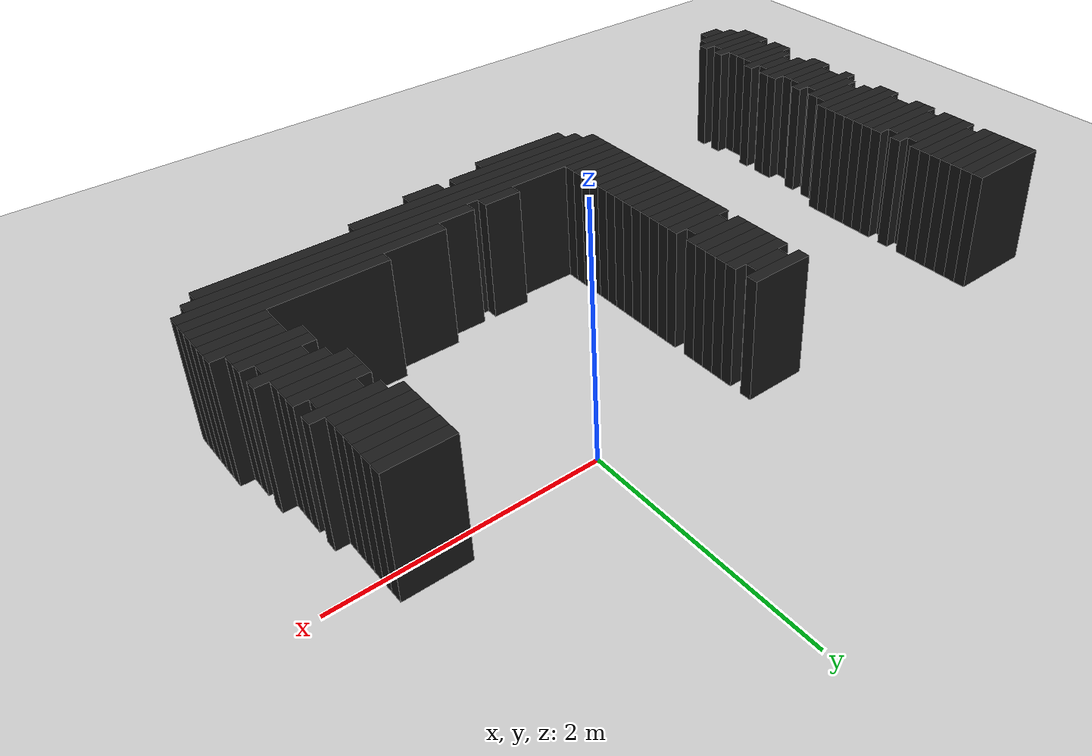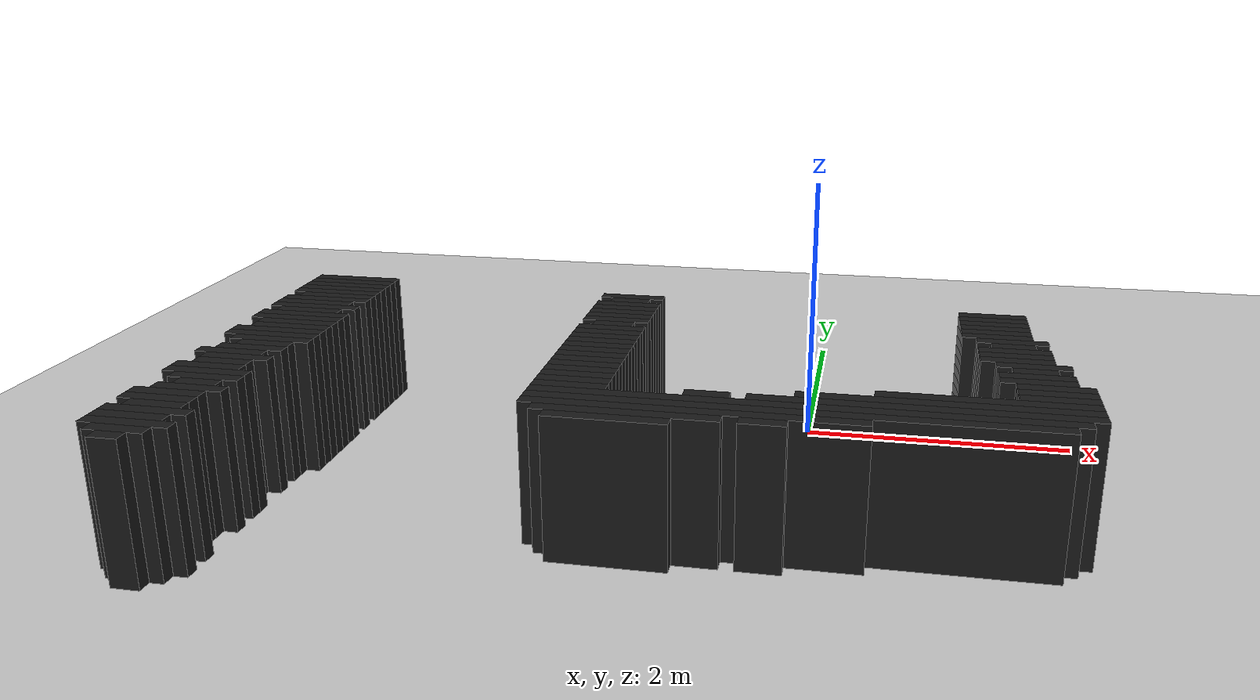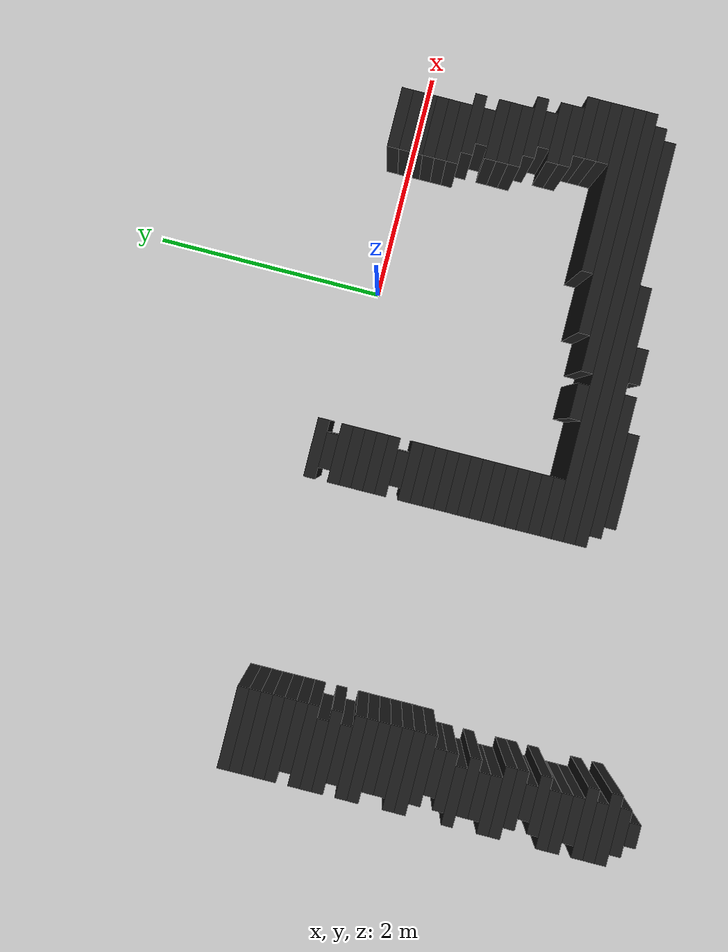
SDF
<sdf version="1.9">
 <world name="drawn_tb4_world">
  <model name="flat_floor">
   <static>true</static>
   <pose>0.0000 0.0000 -0.0100 0.0000 0.0000 0.0000</pose>
   <link name="link">
    <collision name="collision"><geometry><box><size>16.0000 16.0000 0.0200</size></box></geometry></collision>
    <visual name="visual">
     <geometry><box><size>16.0000 16.0000 0.0200</size></box></geometry>
     <material><ambient>0.8 0.8 0.8 1</ambient><diffuse>0.8 0.8 0.8 1</diffuse></material>
    </visual>
   </link>
  </model>
  <model name="drawn_wall_0084">
   <static>true</static>
   <pose>-3.8500 0.2500 0.5000 0.0000 0.0000 0.0000</pose>
   <link name="link">
    <collision name="collision"><geometry><box><size>0.7000 0.1000 1.0000</size></box></geometry></collision>
    <visual name="visual">
     <geometry><box><size>0.7000 0.1000 1.0000</size></box></geometry>
     <material><ambient>0.1 0.1 0.1 1</ambient><diffuse>0.1 0.1 0.1 1</diffuse></material>
    </visual>
   </link>
  </model>
  <model name="drawn_wall_0087">
   <static>true</static>
   <pose>-3.8500 0.1500 0.5000 0.0000 0.0000 0.0000</pose>
   <link name="link">
    <collision name="collision"><geometry><box><size>0.7000 0.1000 1.0000</size></box></geometry></collision>
    <visual name="visual">
     <geometry><box><size>0.7000 0.1000 1.0000</size></box></geometry>
     <material><ambient>0.1 0.1 0.1 1</ambient><diffuse>0.1 0.1 0.1 1</diffuse></material>
    </visual>
   </link>
  </model>
  <model name="drawn_wall_0088">
   <static>true</static>
   <pose>-1.4500 0.1500 0.5000 0.0000 0.0000 0.0000</pose>
   <link name="link">
    <collision name="collision"><geometry><box><size>0.5000 0.1000 1.0000</size></box></geometry></collision>
    <visual name="visual">
     <geometry><box><size>0.5000 0.1000 1.0000</size></box></geometry>
     <material><ambient>0.1 0.1 0.1 1</ambient><diffuse>0.1 0.1 0.1 1</diffuse></material>
    </visual>
   </link>
  </model>
  <model name="drawn_wall_0089">
   <static>true</static>
   <pose>1.3500 0.1500 0.5000 0.0000 0.0000 0.0000</pose>
   <link name="link">
    <collision name="collision"><geometry><box><size>0.5000 0.1000 1.0000</size></box></geometry></collision>
    <visual name="visual">
     <geometry><box><size>0.5000 0.1000 1.0000</size></box></geometry>
     <material><ambient>0.1 0.1 0.1 1</ambient><diffuse>0.1 0.1 0.1 1</diffuse></material>
    </visual>
   </link>
  </model>
  <model name="drawn_wall_0090">
   <static>true</static>
   <pose>-3.8500 0.0500 0.5000 0.0000 0.0000 0.0000</pose>
   <link name="link">
    <collision name="collision"><geometry><box><size>0.7000 0.1000 1.0000</size></box></geometry></collision>
    <visual name="visual">
     <geometry><box><size>0.7000 0.1000 1.0000</size></box></geometry>
     <material><ambient>0.1 0.1 0.1 1</ambient><diffuse>0.1 0.1 0.1 1</diffuse></material>
    </visual>
   </link>
  </model>
  <model name="drawn_wall_0091">
   <static>true</static>
   <pose>-1.4500 0.0500 0.5000 0.0000 0.0000 0.0000</pose>
   <link name="link">
    <collision name="collision"><geometry><box><size>0.3000 0.1000 1.0000</size></box></geometry></collision>
    <visual name="visual">
     <geometry><box><size>0.3000 0.1000 1.0000</size></box></geometry>
     <material><ambient>0.1 0.1 0.1 1</ambient><diffuse>0.1 0.1 0.1 1</diffuse></material>
    </visual>
   </link>
  </model>
  <model name="drawn_wall_0092">
   <static>true</static>
   <pose>1.3500 0.0500 0.5000 0.0000 0.0000 0.0000</pose>
   <link name="link">
    <collision name="collision"><geometry><box><size>0.5000 0.1000 1.0000</size></box></geometry></collision>
    <visual name="visual">
     <geometry><box><size>0.5000 0.1000 1.0000</size></box></geometry>
     <material><ambient>0.1 0.1 0.1 1</ambient><diffuse>0.1 0.1 0.1 1</diffuse></material>
    </visual>
   </link>
  </model>
  <model name="drawn_wall_0093">
   <static>true</static>
   <pose>-3.8500 -0.0500 0.5000 0.0000 0.0000 0.0000</pose>
   <link name="link">
    <collision name="collision"><geometry><box><size>0.7000 0.1000 1.0000</size></box></geometry></collision>
    <visual name="visual">
     <geometry><box><size>0.7000 0.1000 1.0000</size></box></geometry>
     <material><ambient>0.1 0.1 0.1 1</ambient><diffuse>0.1 0.1 0.1 1</diffuse></material>
    </visual>
   </link>
  </model>
  <model name="drawn_wall_0094">
   <static>true</static>
   <pose>-1.4500 -0.0500 0.5000 0.0000 0.0000 0.0000</pose>
   <link name="link">
    <collision name="collision"><geometry><box><size>0.5000 0.1000 1.0000</size></box></geometry></collision>
    <visual name="visual">
     <geometry><box><size>0.5000 0.1000 1.0000</size></box></geometry>
     <material><ambient>0.1 0.1 0.1 1</ambient><diffuse>0.1 0.1 0.1 1</diffuse></material>
    </visual>
   </link>
  </model>
  <model name="drawn_wall_0095">
   <static>true</static>
   <pose>1.3500 -0.0500 0.5000 0.0000 0.0000 0.0000</pose>
   <link name="link">
    <collision name="collision"><geometry><box><size>0.5000 0.1000 1.0000</size></box></geometry></collision>
    <visual name="visual">
     <geometry><box><size>0.5000 0.1000 1.0000</size></box></geometry>
     <material><ambient>0.1 0.1 0.1 1</ambient><diffuse>0.1 0.1 0.1 1</diffuse></material>
    </visual>
   </link>
  </model>
  <model name="drawn_wall_0096">
   <static>true</static>
   <pose>-3.8500 -0.1500 0.5000 0.0000 0.0000 0.0000</pose>
   <link name="link">
    <collision name="collision"><geometry><box><size>0.7000 0.1000 1.0000</size></box></geometry></collision>
    <visual name="visual">
     <geometry><box><size>0.7000 0.1000 1.0000</size></box></geometry>
     <material><ambient>0.1 0.1 0.1 1</ambient><diffuse>0.1 0.1 0.1 1</diffuse></material>
    </visual>
   </link>
  </model>
  <model name="drawn_wall_0097">
   <static>true</static>
   <pose>-1.4500 -0.1500 0.5000 0.0000 0.0000 0.0000</pose>
   <link name="link">
    <collision name="collision"><geometry><box><size>0.5000 0.1000 1.0000</size></box></geometry></collision>
    <visual name="visual">
     <geometry><box><size>0.5000 0.1000 1.0000</size></box></geometry>
     <material><ambient>0.1 0.1 0.1 1</ambient><diffuse>0.1 0.1 0.1 1</diffuse></material>
    </visual>
   </link>
  </model>
  <model name="drawn_wall_0098">
   <static>true</static>
   <pose>1.3500 -0.1500 0.5000 0.0000 0.0000 0.0000</pose>
   <link name="link">
    <collision name="collision"><geometry><box><size>0.5000 0.1000 1.0000</size></box></geometry></collision>
    <visual name="visual">
     <geometry><box><size>0.5000 0.1000 1.0000</size></box></geometry>
     <material><ambient>0.1 0.1 0.1 1</ambient><diffuse>0.1 0.1 0.1 1</diffuse></material>
    </visual>
   </link>
  </model>
  <model name="drawn_wall_0099">
   <static>true</static>
   <pose>-3.8000 -0.2500 0.5000 0.0000 0.0000 0.0000</pose>
   <link name="link">
    <collision name="collision"><geometry><box><size>0.6000 0.1000 1.0000</size></box></geometry></collision>
    <visual name="visual">
     <geometry><box><size>0.6000 0.1000 1.0000</size></box></geometry>
     <material><ambient>0.1 0.1 0.1 1</ambient><diffuse>0.1 0.1 0.1 1</diffuse></material>
    </visual>
   </link>
  </model>
  <model name="drawn_wall_0100">
   <static>true</static>
   <pose>-1.4500 -0.2500 0.5000 0.0000 0.0000 0.0000</pose>
   <link name="link">
    <collision name="collision"><geometry><box><size>0.5000 0.1000 1.0000</size></box></geometry></collision>
    <visual name="visual">
     <geometry><box><size>0.5000 0.1000 1.0000</size></box></geometry>
     <material><ambient>0.1 0.1 0.1 1</ambient><diffuse>0.1 0.1 0.1 1</diffuse></material>
    </visual>
   </link>
  </model>
  <model name="drawn_wall_0101">
   <static>true</static>
   <pose>1.3500 -0.2500 0.5000 0.0000 0.0000 0.0000</pose>
   <link name="link">
    <collision name="collision"><geometry><box><size>0.5000 0.1000 1.0000</size></box></geometry></collision>
    <visual name="visual">
     <geometry><box><size>0.5000 0.1000 1.0000</size></box></geometry>
     <material><ambient>0.1 0.1 0.1 1</ambient><diffuse>0.1 0.1 0.1 1</diffuse></material>
    </visual>
   </link>
  </model>
  <model name="drawn_wall_0102">
   <static>true</static>
   <pose>-3.8500 -0.3500 0.5000 0.0000 0.0000 0.0000</pose>
   <link name="link">
    <collision name="collision"><geometry><box><size>0.7000 0.1000 1.0000</size></box></geometry></collision>
    <visual name="visual">
     <geometry><box><size>0.7000 0.1000 1.0000</size></box></geometry>
     <material><ambient>0.1 0.1 0.1 1</ambient><diffuse>0.1 0.1 0.1 1</diffuse></material>
    </visual>
   </link>
  </model>
  <model name="drawn_wall_0103">
   <static>true</static>
   <pose>-1.4500 -0.3500 0.5000 0.0000 0.0000 0.0000</pose>
   <link name="link">
    <collision name="collision"><geometry><box><size>0.5000 0.1000 1.0000</size></box></geometry></collision>
    <visual name="visual">
     <geometry><box><size>0.5000 0.1000 1.0000</size></box></geometry>
     <material><ambient>0.1 0.1 0.1 1</ambient><diffuse>0.1 0.1 0.1 1</diffuse></material>
    </visual>
   </link>
  </model>
  <model name="drawn_wall_0104">
   <static>true</static>
   <pose>1.3500 -0.3500 0.5000 0.0000 0.0000 0.0000</pose>
   <link name="link">
    <collision name="collision"><geometry><box><size>0.5000 0.1000 1.0000</size></box></geometry></collision>
    <visual name="visual">
     <geometry><box><size>0.5000 0.1000 1.0000</size></box></geometry>
     <material><ambient>0.1 0.1 0.1 1</ambient><diffuse>0.1 0.1 0.1 1</diffuse></material>
    </visual>
   </link>
  </model>
  <model name="drawn_wall_0105">
   <static>true</static>
   <pose>-3.9000 -0.4500 0.5000 0.0000 0.0000 0.0000</pose>
   <link name="link">
    <collision name="collision"><geometry><box><size>0.6000 0.1000 1.0000</size></box></geometry></collision>
    <visual name="visual">
     <geometry><box><size>0.6000 0.1000 1.0000</size></box></geometry>
     <material><ambient>0.1 0.1 0.1 1</ambient><diffuse>0.1 0.1 0.1 1</diffuse></material>
    </visual>
   </link>
  </model>
  <model name="drawn_wall_0106">
   <static>true</static>
   <pose>-1.4500 -0.4500 0.5000 0.0000 0.0000 0.0000</pose>
   <link name="link">
    <collision name="collision"><geometry><box><size>0.5000 0.1000 1.0000</size></box></geometry></collision>
    <visual name="visual">
     <geometry><box><size>0.5000 0.1000 1.0000</size></box></geometry>
     <material><ambient>0.1 0.1 0.1 1</ambient><diffuse>0.1 0.1 0.1 1</diffuse></material>
    </visual>
   </link>
  </model>
  <model name="drawn_wall_0107">
   <static>true</static>
   <pose>1.4500 -0.4500 0.5000 0.0000 0.0000 0.0000</pose>
   <link name="link">
    <collision name="collision"><geometry><box><size>0.5000 0.1000 1.0000</size></box></geometry></collision>
    <visual name="visual">
     <geometry><box><size>0.5000 0.1000 1.0000</size></box></geometry>
     <material><ambient>0.1 0.1 0.1 1</ambient><diffuse>0.1 0.1 0.1 1</diffuse></material>
    </visual>
   </link>
  </model>
  <model name="drawn_wall_0108">
   <static>true</static>
   <pose>-3.8500 -0.5500 0.5000 0.0000 0.0000 0.0000</pose>
   <link name="link">
    <collision name="collision"><geometry><box><size>0.7000 0.1000 1.0000</size></box></geometry></collision>
    <visual name="visual">
     <geometry><box><size>0.7000 0.1000 1.0000</size></box></geometry>
     <material><ambient>0.1 0.1 0.1 1</ambient><diffuse>0.1 0.1 0.1 1</diffuse></material>
    </visual>
   </link>
  </model>
  <model name="drawn_wall_0109">
   <static>true</static>
   <pose>-1.4500 -0.5500 0.5000 0.0000 0.0000 0.0000</pose>
   <link name="link">
    <collision name="collision"><geometry><box><size>0.3000 0.1000 1.0000</size></box></geometry></collision>
    <visual name="visual">
     <geometry><box><size>0.3000 0.1000 1.0000</size></box></geometry>
     <material><ambient>0.1 0.1 0.1 1</ambient><diffuse>0.1 0.1 0.1 1</diffuse></material>
    </visual>
   </link>
  </model>
  <model name="drawn_wall_0110">
   <static>true</static>
   <pose>1.4500 -0.5500 0.5000 0.0000 0.0000 0.0000</pose>
   <link name="link">
    <collision name="collision"><geometry><box><size>0.3000 0.1000 1.0000</size></box></geometry></collision>
    <visual name="visual">
     <geometry><box><size>0.3000 0.1000 1.0000</size></box></geometry>
     <material><ambient>0.1 0.1 0.1 1</ambient><diffuse>0.1 0.1 0.1 1</diffuse></material>
    </visual>
   </link>
  </model>
  <model name="drawn_wall_0111">
   <static>true</static>
   <pose>-3.8500 -0.6500 0.5000 0.0000 0.0000 0.0000</pose>
   <link name="link">
    <collision name="collision"><geometry><box><size>0.5000 0.1000 1.0000</size></box></geometry></collision>
    <visual name="visual">
     <geometry><box><size>0.5000 0.1000 1.0000</size></box></geometry>
     <material><ambient>0.1 0.1 0.1 1</ambient><diffuse>0.1 0.1 0.1 1</diffuse></material>
    </visual>
   </link>
  </model>
  <model name="drawn_wall_0112">
   <static>true</static>
   <pose>-1.4500 -0.6500 0.5000 0.0000 0.0000 0.0000</pose>
   <link name="link">
    <collision name="collision"><geometry><box><size>0.5000 0.1000 1.0000</size></box></geometry></collision>
    <visual name="visual">
     <geometry><box><size>0.5000 0.1000 1.0000</size></box></geometry>
     <material><ambient>0.1 0.1 0.1 1</ambient><diffuse>0.1 0.1 0.1 1</diffuse></material>
    </visual>
   </link>
  </model>
  <model name="drawn_wall_0113">
   <static>true</static>
   <pose>1.4500 -0.6500 0.5000 0.0000 0.0000 0.0000</pose>
   <link name="link">
    <collision name="collision"><geometry><box><size>0.5000 0.1000 1.0000</size></box></geometry></collision>
    <visual name="visual">
     <geometry><box><size>0.5000 0.1000 1.0000</size></box></geometry>
     <material><ambient>0.1 0.1 0.1 1</ambient><diffuse>0.1 0.1 0.1 1</diffuse></material>
    </visual>
   </link>
  </model>
  <model name="drawn_wall_0114">
   <static>true</static>
   <pose>-3.8500 -0.7500 0.5000 0.0000 0.0000 0.0000</pose>
   <link name="link">
    <collision name="collision"><geometry><box><size>0.7000 0.1000 1.0000</size></box></geometry></collision>
    <visual name="visual">
     <geometry><box><size>0.7000 0.1000 1.0000</size></box></geometry>
     <material><ambient>0.1 0.1 0.1 1</ambient><diffuse>0.1 0.1 0.1 1</diffuse></material>
    </visual>
   </link>
  </model>
  <model name="drawn_wall_0115">
   <static>true</static>
   <pose>-1.4500 -0.7500 0.5000 0.0000 0.0000 0.0000</pose>
   <link name="link">
    <collision name="collision"><geometry><box><size>0.5000 0.1000 1.0000</size></box></geometry></collision>
    <visual name="visual">
     <geometry><box><size>0.5000 0.1000 1.0000</size></box></geometry>
     <material><ambient>0.1 0.1 0.1 1</ambient><diffuse>0.1 0.1 0.1 1</diffuse></material>
    </visual>
   </link>
  </model>
  <model name="drawn_wall_0116">
   <static>true</static>
   <pose>1.4500 -0.7500 0.5000 0.0000 0.0000 0.0000</pose>
   <link name="link">
    <collision name="collision"><geometry><box><size>0.5000 0.1000 1.0000</size></box></geometry></collision>
    <visual name="visual">
     <geometry><box><size>0.5000 0.1000 1.0000</size></box></geometry>
     <material><ambient>0.1 0.1 0.1 1</ambient><diffuse>0.1 0.1 0.1 1</diffuse></material>
    </visual>
   </link>
  </model>
  <model name="drawn_wall_0117">
   <static>true</static>
   <pose>-3.8500 -0.8500 0.5000 0.0000 0.0000 0.0000</pose>
   <link name="link">
    <collision name="collision"><geometry><box><size>0.7000 0.1000 1.0000</size></box></geometry></collision>
    <visual name="visual">
     <geometry><box><size>0.7000 0.1000 1.0000</size></box></geometry>
     <material><ambient>0.1 0.1 0.1 1</ambient><diffuse>0.1 0.1 0.1 1</diffuse></material>
    </visual>
   </link>
  </model>
  <model name="drawn_wall_0118">
   <static>true</static>
   <pose>-1.4500 -0.8500 0.5000 0.0000 0.0000 0.0000</pose>
   <link name="link">
    <collision name="collision"><geometry><box><size>0.5000 0.1000 1.0000</size></box></geometry></collision>
    <visual name="visual">
     <geometry><box><size>0.5000 0.1000 1.0000</size></box></geometry>
     <material><ambient>0.1 0.1 0.1 1</ambient><diffuse>0.1 0.1 0.1 1</diffuse></material>
    </visual>
   </link>
  </model>
  <model name="drawn_wall_0119">
   <static>true</static>
   <pose>1.4500 -0.8500 0.5000 0.0000 0.0000 0.0000</pose>
   <link name="link">
    <collision name="collision"><geometry><box><size>0.5000 0.1000 1.0000</size></box></geometry></collision>
    <visual name="visual">
     <geometry><box><size>0.5000 0.1000 1.0000</size></box></geometry>
     <material><ambient>0.1 0.1 0.1 1</ambient><diffuse>0.1 0.1 0.1 1</diffuse></material>
    </visual>
   </link>
  </model>
  <model name="drawn_wall_0120">
   <static>true</static>
   <pose>-3.8000 -0.9500 0.5000 0.0000 0.0000 0.0000</pose>
   <link name="link">
    <collision name="collision"><geometry><box><size>0.6000 0.1000 1.0000</size></box></geometry></collision>
    <visual name="visual">
     <geometry><box><size>0.6000 0.1000 1.0000</size></box></geometry>
     <material><ambient>0.1 0.1 0.1 1</ambient><diffuse>0.1 0.1 0.1 1</diffuse></material>
    </visual>
   </link>
  </model>
  <model name="drawn_wall_0121">
   <static>true</static>
   <pose>-1.4500 -0.9500 0.5000 0.0000 0.0000 0.0000</pose>
   <link name="link">
    <collision name="collision"><geometry><box><size>0.5000 0.1000 1.0000</size></box></geometry></collision>
    <visual name="visual">
     <geometry><box><size>0.5000 0.1000 1.0000</size></box></geometry>
     <material><ambient>0.1 0.1 0.1 1</ambient><diffuse>0.1 0.1 0.1 1</diffuse></material>
    </visual>
   </link>
  </model>
  <model name="drawn_wall_0122">
   <static>true</static>
   <pose>1.5500 -0.9500 0.5000 0.0000 0.0000 0.0000</pose>
   <link name="link">
    <collision name="collision"><geometry><box><size>0.5000 0.1000 1.0000</size></box></geometry></collision>
    <visual name="visual">
     <geometry><box><size>0.5000 0.1000 1.0000</size></box></geometry>
     <material><ambient>0.1 0.1 0.1 1</ambient><diffuse>0.1 0.1 0.1 1</diffuse></material>
    </visual>
   </link>
  </model>
  <model name="drawn_wall_0123">
   <static>true</static>
   <pose>-3.8000 -1.0500 0.5000 0.0000 0.0000 0.0000</pose>
   <link name="link">
    <collision name="collision"><geometry><box><size>0.6000 0.1000 1.0000</size></box></geometry></collision>
    <visual name="visual">
     <geometry><box><size>0.6000 0.1000 1.0000</size></box></geometry>
     <material><ambient>0.1 0.1 0.1 1</ambient><diffuse>0.1 0.1 0.1 1</diffuse></material>
    </visual>
   </link>
  </model>
  <model name="drawn_wall_0124">
   <static>true</static>
   <pose>-1.4500 -1.0500 0.5000 0.0000 0.0000 0.0000</pose>
   <link name="link">
    <collision name="collision"><geometry><box><size>0.5000 0.1000 1.0000</size></box></geometry></collision>
    <visual name="visual">
     <geometry><box><size>0.5000 0.1000 1.0000</size></box></geometry>
     <material><ambient>0.1 0.1 0.1 1</ambient><diffuse>0.1 0.1 0.1 1</diffuse></material>
    </visual>
   </link>
  </model>
  <model name="drawn_wall_0125">
   <static>true</static>
   <pose>1.5500 -1.0500 0.5000 0.0000 0.0000 0.0000</pose>
   <link name="link">
    <collision name="collision"><geometry><box><size>0.3000 0.1000 1.0000</size></box></geometry></collision>
    <visual name="visual">
     <geometry><box><size>0.3000 0.1000 1.0000</size></box></geometry>
     <material><ambient>0.1 0.1 0.1 1</ambient><diffuse>0.1 0.1 0.1 1</diffuse></material>
    </visual>
   </link>
  </model>
  <model name="drawn_wall_0126">
   <static>true</static>
   <pose>-3.8500 -1.1500 0.5000 0.0000 0.0000 0.0000</pose>
   <link name="link">
    <collision name="collision"><geometry><box><size>0.7000 0.1000 1.0000</size></box></geometry></collision>
    <visual name="visual">
     <geometry><box><size>0.7000 0.1000 1.0000</size></box></geometry>
     <material><ambient>0.1 0.1 0.1 1</ambient><diffuse>0.1 0.1 0.1 1</diffuse></material>
    </visual>
   </link>
  </model>
  <model name="drawn_wall_0127">
   <static>true</static>
   <pose>-1.4500 -1.1500 0.5000 0.0000 0.0000 0.0000</pose>
   <link name="link">
    <collision name="collision"><geometry><box><size>0.5000 0.1000 1.0000</size></box></geometry></collision>
    <visual name="visual">
     <geometry><box><size>0.5000 0.1000 1.0000</size></box></geometry>
     <material><ambient>0.1 0.1 0.1 1</ambient><diffuse>0.1 0.1 0.1 1</diffuse></material>
    </visual>
   </link>
  </model>
  <model name="drawn_wall_0128">
   <static>true</static>
   <pose>1.5500 -1.1500 0.5000 0.0000 0.0000 0.0000</pose>
   <link name="link">
    <collision name="collision"><geometry><box><size>0.5000 0.1000 1.0000</size></box></geometry></collision>
    <visual name="visual">
     <geometry><box><size>0.5000 0.1000 1.0000</size></box></geometry>
     <material><ambient>0.1 0.1 0.1 1</ambient><diffuse>0.1 0.1 0.1 1</diffuse></material>
    </visual>
   </link>
  </model>
  <model name="drawn_wall_0129">
   <static>true</static>
   <pose>-3.8500 -1.2500 0.5000 0.0000 0.0000 0.0000</pose>
   <link name="link">
    <collision name="collision"><geometry><box><size>0.7000 0.1000 1.0000</size></box></geometry></collision>
    <visual name="visual">
     <geometry><box><size>0.7000 0.1000 1.0000</size></box></geometry>
     <material><ambient>0.1 0.1 0.1 1</ambient><diffuse>0.1 0.1 0.1 1</diffuse></material>
    </visual>
   </link>
  </model>
  <model name="drawn_wall_0130">
   <static>true</static>
   <pose>-1.4500 -1.2500 0.5000 0.0000 0.0000 0.0000</pose>
   <link name="link">
    <collision name="collision"><geometry><box><size>0.5000 0.1000 1.0000</size></box></geometry></collision>
    <visual name="visual">
     <geometry><box><size>0.5000 0.1000 1.0000</size></box></geometry>
     <material><ambient>0.1 0.1 0.1 1</ambient><diffuse>0.1 0.1 0.1 1</diffuse></material>
    </visual>
   </link>
  </model>
  <model name="drawn_wall_0131">
   <static>true</static>
   <pose>1.5500 -1.2500 0.5000 0.0000 0.0000 0.0000</pose>
   <link name="link">
    <collision name="collision"><geometry><box><size>0.5000 0.1000 1.0000</size></box></geometry></collision>
    <visual name="visual">
     <geometry><box><size>0.5000 0.1000 1.0000</size></box></geometry>
     <material><ambient>0.1 0.1 0.1 1</ambient><diffuse>0.1 0.1 0.1 1</diffuse></material>
    </visual>
   </link>
  </model>
  <model name="drawn_wall_0132">
   <static>true</static>
   <pose>-3.8000 -1.3500 0.5000 0.0000 0.0000 0.0000</pose>
   <link name="link">
    <collision name="collision"><geometry><box><size>0.6000 0.1000 1.0000</size></box></geometry></collision>
    <visual name="visual">
     <geometry><box><size>0.6000 0.1000 1.0000</size></box></geometry>
     <material><ambient>0.1 0.1 0.1 1</ambient><diffuse>0.1 0.1 0.1 1</diffuse></material>
    </visual>
   </link>
  </model>
  <model name="drawn_wall_0133">
   <static>true</static>
   <pose>-1.4500 -1.3500 0.5000 0.0000 0.0000 0.0000</pose>
   <link name="link">
    <collision name="collision"><geometry><box><size>0.5000 0.1000 1.0000</size></box></geometry></collision>
    <visual name="visual">
     <geometry><box><size>0.5000 0.1000 1.0000</size></box></geometry>
     <material><ambient>0.1 0.1 0.1 1</ambient><diffuse>0.1 0.1 0.1 1</diffuse></material>
    </visual>
   </link>
  </model>
  <model name="drawn_wall_0134">
   <static>true</static>
   <pose>1.6500 -1.3500 0.5000 0.0000 0.0000 0.0000</pose>
   <link name="link">
    <collision name="collision"><geometry><box><size>0.5000 0.1000 1.0000</size></box></geometry></collision>
    <visual name="visual">
     <geometry><box><size>0.5000 0.1000 1.0000</size></box></geometry>
     <material><ambient>0.1 0.1 0.1 1</ambient><diffuse>0.1 0.1 0.1 1</diffuse></material>
    </visual>
   </link>
  </model>
  <model name="drawn_wall_0135">
   <static>true</static>
   <pose>-3.8000 -1.4500 0.5000 0.0000 0.0000 0.0000</pose>
   <link name="link">
    <collision name="collision"><geometry><box><size>0.4000 0.1000 1.0000</size></box></geometry></collision>
    <visual name="visual">
     <geometry><box><size>0.4000 0.1000 1.0000</size></box></geometry>
     <material><ambient>0.1 0.1 0.1 1</ambient><diffuse>0.1 0.1 0.1 1</diffuse></material>
    </visual>
   </link>
  </model>
  <model name="drawn_wall_0136">
   <static>true</static>
   <pose>-1.4500 -1.4500 0.5000 0.0000 0.0000 0.0000</pose>
   <link name="link">
    <collision name="collision"><geometry><box><size>0.5000 0.1000 1.0000</size></box></geometry></collision>
    <visual name="visual">
     <geometry><box><size>0.5000 0.1000 1.0000</size></box></geometry>
     <material><ambient>0.1 0.1 0.1 1</ambient><diffuse>0.1 0.1 0.1 1</diffuse></material>
    </visual>
   </link>
  </model>
  <model name="drawn_wall_0137">
   <static>true</static>
   <pose>1.6500 -1.4500 0.5000 0.0000 0.0000 0.0000</pose>
   <link name="link">
    <collision name="collision"><geometry><box><size>0.5000 0.1000 1.0000</size></box></geometry></collision>
    <visual name="visual">
     <geometry><box><size>0.5000 0.1000 1.0000</size></box></geometry>
     <material><ambient>0.1 0.1 0.1 1</ambient><diffuse>0.1 0.1 0.1 1</diffuse></material>
    </visual>
   </link>
  </model>
  <model name="drawn_wall_0138">
   <static>true</static>
   <pose>-3.8500 -1.5500 0.5000 0.0000 0.0000 0.0000</pose>
   <link name="link">
    <collision name="collision"><geometry><box><size>0.5000 0.1000 1.0000</size></box></geometry></collision>
    <visual name="visual">
     <geometry><box><size>0.5000 0.1000 1.0000</size></box></geometry>
     <material><ambient>0.1 0.1 0.1 1</ambient><diffuse>0.1 0.1 0.1 1</diffuse></material>
    </visual>
   </link>
  </model>
  <model name="drawn_wall_0139">
   <static>true</static>
   <pose>-1.4500 -1.5500 0.5000 0.0000 0.0000 0.0000</pose>
   <link name="link">
    <collision name="collision"><geometry><box><size>0.5000 0.1000 1.0000</size></box></geometry></collision>
    <visual name="visual">
     <geometry><box><size>0.5000 0.1000 1.0000</size></box></geometry>
     <material><ambient>0.1 0.1 0.1 1</ambient><diffuse>0.1 0.1 0.1 1</diffuse></material>
    </visual>
   </link>
  </model>
  <model name="drawn_wall_0140">
   <static>true</static>
   <pose>1.6500 -1.5500 0.5000 0.0000 0.0000 0.0000</pose>
   <link name="link">
    <collision name="collision"><geometry><box><size>0.5000 0.1000 1.0000</size></box></geometry></collision>
    <visual name="visual">
     <geometry><box><size>0.5000 0.1000 1.0000</size></box></geometry>
     <material><ambient>0.1 0.1 0.1 1</ambient><diffuse>0.1 0.1 0.1 1</diffuse></material>
    </visual>
   </link>
  </model>
  <model name="drawn_wall_0141">
   <static>true</static>
   <pose>-3.9500 -1.6500 0.5000 0.0000 0.0000 0.0000</pose>
   <link name="link">
    <collision name="collision"><geometry><box><size>0.5000 0.1000 1.0000</size></box></geometry></collision>
    <visual name="visual">
     <geometry><box><size>0.5000 0.1000 1.0000</size></box></geometry>
     <material><ambient>0.1 0.1 0.1 1</ambient><diffuse>0.1 0.1 0.1 1</diffuse></material>
    </visual>
   </link>
  </model>
  <model name="drawn_wall_0142">
   <static>true</static>
   <pose>-1.4500 -1.6500 0.5000 0.0000 0.0000 0.0000</pose>
   <link name="link">
    <collision name="collision"><geometry><box><size>0.5000 0.1000 1.0000</size></box></geometry></collision>
    <visual name="visual">
     <geometry><box><size>0.5000 0.1000 1.0000</size></box></geometry>
     <material><ambient>0.1 0.1 0.1 1</ambient><diffuse>0.1 0.1 0.1 1</diffuse></material>
    </visual>
   </link>
  </model>
  <model name="drawn_wall_0143">
   <static>true</static>
   <pose>1.2000 -1.6500 0.5000 0.0000 0.0000 0.0000</pose>
   <link name="link">
    <collision name="collision"><geometry><box><size>1.4000 0.1000 1.0000</size></box></geometry></collision>
    <visual name="visual">
     <geometry><box><size>1.4000 0.1000 1.0000</size></box></geometry>
     <material><ambient>0.1 0.1 0.1 1</ambient><diffuse>0.1 0.1 0.1 1</diffuse></material>
    </visual>
   </link>
  </model>
  <model name="drawn_wall_0144">
   <static>true</static>
   <pose>-3.8500 -1.7500 0.5000 0.0000 0.0000 0.0000</pose>
   <link name="link">
    <collision name="collision"><geometry><box><size>0.5000 0.1000 1.0000</size></box></geometry></collision>
    <visual name="visual">
     <geometry><box><size>0.5000 0.1000 1.0000</size></box></geometry>
     <material><ambient>0.1 0.1 0.1 1</ambient><diffuse>0.1 0.1 0.1 1</diffuse></material>
    </visual>
   </link>
  </model>
  <model name="drawn_wall_0145">
   <static>true</static>
   <pose>-1.4500 -1.7500 0.5000 0.0000 0.0000 0.0000</pose>
   <link name="link">
    <collision name="collision"><geometry><box><size>0.5000 0.1000 1.0000</size></box></geometry></collision>
    <visual name="visual">
     <geometry><box><size>0.5000 0.1000 1.0000</size></box></geometry>
     <material><ambient>0.1 0.1 0.1 1</ambient><diffuse>0.1 0.1 0.1 1</diffuse></material>
    </visual>
   </link>
  </model>
  <model name="drawn_wall_0146">
   <static>true</static>
   <pose>0.9500 -1.7500 0.5000 0.0000 0.0000 0.0000</pose>
   <link name="link">
    <collision name="collision"><geometry><box><size>1.9000 0.1000 1.0000</size></box></geometry></collision>
    <visual name="visual">
     <geometry><box><size>1.9000 0.1000 1.0000</size></box></geometry>
     <material><ambient>0.1 0.1 0.1 1</ambient><diffuse>0.1 0.1 0.1 1</diffuse></material>
    </visual>
   </link>
  </model>
  <model name="drawn_wall_0147">
   <static>true</static>
   <pose>-3.9000 -1.8500 0.5000 0.0000 0.0000 0.0000</pose>
   <link name="link">
    <collision name="collision"><geometry><box><size>0.4000 0.1000 1.0000</size></box></geometry></collision>
    <visual name="visual">
     <geometry><box><size>0.4000 0.1000 1.0000</size></box></geometry>
     <material><ambient>0.1 0.1 0.1 1</ambient><diffuse>0.1 0.1 0.1 1</diffuse></material>
    </visual>
   </link>
  </model>
  <model name="drawn_wall_0148">
   <static>true</static>
   <pose>-1.4500 -1.8500 0.5000 0.0000 0.0000 0.0000</pose>
   <link name="link">
    <collision name="collision"><geometry><box><size>0.5000 0.1000 1.0000</size></box></geometry></collision>
    <visual name="visual">
     <geometry><box><size>0.5000 0.1000 1.0000</size></box></geometry>
     <material><ambient>0.1 0.1 0.1 1</ambient><diffuse>0.1 0.1 0.1 1</diffuse></material>
    </visual>
   </link>
  </model>
  <model name="drawn_wall_0149">
   <static>true</static>
   <pose>-0.5500 -1.8500 0.5000 0.0000 0.0000 0.0000</pose>
   <link name="link">
    <collision name="collision"><geometry><box><size>0.3000 0.1000 1.0000</size></box></geometry></collision>
    <visual name="visual">
     <geometry><box><size>0.3000 0.1000 1.0000</size></box></geometry>
     <material><ambient>0.1 0.1 0.1 1</ambient><diffuse>0.1 0.1 0.1 1</diffuse></material>
    </visual>
   </link>
  </model>
  <model name="drawn_wall_0150">
   <static>true</static>
   <pose>0.8000 -1.8500 0.5000 0.0000 0.0000 0.0000</pose>
   <link name="link">
    <collision name="collision"><geometry><box><size>2.2000 0.1000 1.0000</size></box></geometry></collision>
    <visual name="visual">
     <geometry><box><size>2.2000 0.1000 1.0000</size></box></geometry>
     <material><ambient>0.1 0.1 0.1 1</ambient><diffuse>0.1 0.1 0.1 1</diffuse></material>
    </visual>
   </link>
  </model>
  <model name="drawn_wall_0151">
   <static>true</static>
   <pose>-3.9500 -1.9500 0.5000 0.0000 0.0000 0.0000</pose>
   <link name="link">
    <collision name="collision"><geometry><box><size>0.5000 0.1000 1.0000</size></box></geometry></collision>
    <visual name="visual">
     <geometry><box><size>0.5000 0.1000 1.0000</size></box></geometry>
     <material><ambient>0.1 0.1 0.1 1</ambient><diffuse>0.1 0.1 0.1 1</diffuse></material>
    </visual>
   </link>
  </model>
  <model name="drawn_wall_0152">
   <static>true</static>
   <pose>0.0500 -1.9500 0.5000 0.0000 0.0000 0.0000</pose>
   <link name="link">
    <collision name="collision"><geometry><box><size>3.5000 0.1000 1.0000</size></box></geometry></collision>
    <visual name="visual">
     <geometry><box><size>3.5000 0.1000 1.0000</size></box></geometry>
     <material><ambient>0.1 0.1 0.1 1</ambient><diffuse>0.1 0.1 0.1 1</diffuse></material>
    </visual>
   </link>
  </model>
  <model name="drawn_wall_0153">
   <static>true</static>
   <pose>-3.9000 -2.0500 0.5000 0.0000 0.0000 0.0000</pose>
   <link name="link">
    <collision name="collision"><geometry><box><size>0.6000 0.1000 1.0000</size></box></geometry></collision>
    <visual name="visual">
     <geometry><box><size>0.6000 0.1000 1.0000</size></box></geometry>
     <material><ambient>0.1 0.1 0.1 1</ambient><diffuse>0.1 0.1 0.1 1</diffuse></material>
    </visual>
   </link>
  </model>
  <model name="drawn_wall_0154">
   <static>true</static>
   <pose>0.0000 -2.0500 0.5000 0.0000 0.0000 0.0000</pose>
   <link name="link">
    <collision name="collision"><geometry><box><size>3.4000 0.1000 1.0000</size></box></geometry></collision>
    <visual name="visual">
     <geometry><box><size>3.4000 0.1000 1.0000</size></box></geometry>
     <material><ambient>0.1 0.1 0.1 1</ambient><diffuse>0.1 0.1 0.1 1</diffuse></material>
    </visual>
   </link>
  </model>
  <model name="drawn_wall_0155">
   <static>true</static>
   <pose>-3.8500 -2.1500 0.5000 0.0000 0.0000 0.0000</pose>
   <link name="link">
    <collision name="collision"><geometry><box><size>0.5000 0.1000 1.0000</size></box></geometry></collision>
    <visual name="visual">
     <geometry><box><size>0.5000 0.1000 1.0000</size></box></geometry>
     <material><ambient>0.1 0.1 0.1 1</ambient><diffuse>0.1 0.1 0.1 1</diffuse></material>
    </visual>
   </link>
  </model>
  <model name="drawn_wall_0156">
   <static>true</static>
   <pose>-0.6000 -2.1500 0.5000 0.0000 0.0000 0.0000</pose>
   <link name="link">
    <collision name="collision"><geometry><box><size>2.2000 0.1000 1.0000</size></box></geometry></collision>
    <visual name="visual">
     <geometry><box><size>2.2000 0.1000 1.0000</size></box></geometry>
     <material><ambient>0.1 0.1 0.1 1</ambient><diffuse>0.1 0.1 0.1 1</diffuse></material>
    </visual>
   </link>
  </model>
  <model name="drawn_wall_0157">
   <static>true</static>
   <pose>-3.8500 -2.2500 0.5000 0.0000 0.0000 0.0000</pose>
   <link name="link">
    <collision name="collision"><geometry><box><size>0.3000 0.1000 1.0000</size></box></geometry></collision>
    <visual name="visual">
     <geometry><box><size>0.3000 0.1000 1.0000</size></box></geometry>
     <material><ambient>0.1 0.1 0.1 1</ambient><diffuse>0.1 0.1 0.1 1</diffuse></material>
    </visual>
   </link>
  </model>
  <model name="drawn_wall_0158">
   <static>true</static>
   <pose>-1.0000 -2.2500 0.5000 0.0000 0.0000 0.0000</pose>
   <link name="link">
    <collision name="collision"><geometry><box><size>1.2000 0.1000 1.0000</size></box></geometry></collision>
    <visual name="visual">
     <geometry><box><size>1.2000 0.1000 1.0000</size></box></geometry>
     <material><ambient>0.1 0.1 0.1 1</ambient><diffuse>0.1 0.1 0.1 1</diffuse></material>
    </visual>
   </link>
  </model>
  <model name="drawn_wall_0159">
   <static>true</static>
   <pose>-0.1500 -2.2500 0.5000 0.0000 0.0000 0.0000</pose>
   <link name="link">
    <collision name="collision"><geometry><box><size>0.3000 0.1000 1.0000</size></box></geometry></collision>
    <visual name="visual">
     <geometry><box><size>0.3000 0.1000 1.0000</size></box></geometry>
     <material><ambient>0.1 0.1 0.1 1</ambient><diffuse>0.1 0.1 0.1 1</diffuse></material>
    </visual>
   </link>
  </model>
  <model name="drawn_wall_0160">
   <static>true</static>
   <pose>-3.8500 -2.3500 0.5000 0.0000 0.0000 0.0000</pose>
   <link name="link">
    <collision name="collision"><geometry><box><size>0.5000 0.1000 1.0000</size></box></geometry></collision>
    <visual name="visual">
     <geometry><box><size>0.5000 0.1000 1.0000</size></box></geometry>
     <material><ambient>0.1 0.1 0.1 1</ambient><diffuse>0.1 0.1 0.1 1</diffuse></material>
    </visual>
   </link>
  </model>
  <model name="drawn_wall_0161">
   <static>true</static>
   <pose>-1.1000 -2.3500 0.5000 0.0000 0.0000 0.0000</pose>
   <link name="link">
    <collision name="collision"><geometry><box><size>0.8000 0.1000 1.0000</size></box></geometry></collision>
    <visual name="visual">
     <geometry><box><size>0.8000 0.1000 1.0000</size></box></geometry>
     <material><ambient>0.1 0.1 0.1 1</ambient><diffuse>0.1 0.1 0.1 1</diffuse></material>
    </visual>
   </link>
  </model>
  <model name="drawn_wall_0162">
   <static>true</static>
   <pose>-3.9500 -2.4500 0.5000 0.0000 0.0000 0.0000</pose>
   <link name="link">
    <collision name="collision"><geometry><box><size>0.5000 0.1000 1.0000</size></box></geometry></collision>
    <visual name="visual">
     <geometry><box><size>0.5000 0.1000 1.0000</size></box></geometry>
     <material><ambient>0.1 0.1 0.1 1</ambient><diffuse>0.1 0.1 0.1 1</diffuse></material>
    </visual>
   </link>
  </model>
  <model name="drawn_wall_0163">
   <static>true</static>
   <pose>-3.9500 -2.5500 0.5000 0.0000 0.0000 0.0000</pose>
   <link name="link">
    <collision name="collision"><geometry><box><size>0.5000 0.1000 1.0000</size></box></geometry></collision>
    <visual name="visual">
     <geometry><box><size>0.5000 0.1000 1.0000</size></box></geometry>
     <material><ambient>0.1 0.1 0.1 1</ambient><diffuse>0.1 0.1 0.1 1</diffuse></material>
    </visual>
   </link>
  </model>
  <model name="drawn_wall_0164">
   <static>true</static>
   <pose>-3.9000 -2.6500 0.5000 0.0000 0.0000 0.0000</pose>
   <link name="link">
    <collision name="collision"><geometry><box><size>0.4000 0.1000 1.0000</size></box></geometry></collision>
    <visual name="visual">
     <geometry><box><size>0.4000 0.1000 1.0000</size></box></geometry>
     <material><ambient>0.1 0.1 0.1 1</ambient><diffuse>0.1 0.1 0.1 1</diffuse></material>
    </visual>
   </link>
  </model>
  <model name="drawn_wall_0165">
   <static>true</static>
   <pose>-3.9000 -2.7500 0.5000 0.0000 0.0000 0.0000</pose>
   <link name="link">
    <collision name="collision"><geometry><box><size>0.6000 0.1000 1.0000</size></box></geometry></collision>
    <visual name="visual">
     <geometry><box><size>0.6000 0.1000 1.0000</size></box></geometry>
     <material><ambient>0.1 0.1 0.1 1</ambient><diffuse>0.1 0.1 0.1 1</diffuse></material>
    </visual>
   </link>
  </model>
  <model name="drawn_wall_0166">
   <static>true</static>
   <pose>-3.9500 -2.8500 0.5000 0.0000 0.0000 0.0000</pose>
   <link name="link">
    <collision name="collision"><geometry><box><size>0.5000 0.1000 1.0000</size></box></geometry></collision>
    <visual name="visual">
     <geometry><box><size>0.5000 0.1000 1.0000</size></box></geometry>
     <material><ambient>0.1 0.1 0.1 1</ambient><diffuse>0.1 0.1 0.1 1</diffuse></material>
    </visual>
   </link>
  </model>
  <model name="drawn_wall_0167">
   <static>true</static>
   <pose>-3.9000 -2.9500 0.5000 0.0000 0.0000 0.0000</pose>
   <link name="link">
    <collision name="collision"><geometry><box><size>0.6000 0.1000 1.0000</size></box></geometry></collision>
    <visual name="visual">
     <geometry><box><size>0.6000 0.1000 1.0000</size></box></geometry>
     <material><ambient>0.1 0.1 0.1 1</ambient><diffuse>0.1 0.1 0.1 1</diffuse></material>
    </visual>
   </link>
  </model>
  <model name="drawn_wall_0168">
   <static>true</static>
   <pose>-3.9000 -3.0500 0.5000 0.0000 0.0000 0.0000</pose>
   <link name="link">
    <collision name="collision"><geometry><box><size>0.4000 0.1000 1.0000</size></box></geometry></collision>
    <visual name="visual">
     <geometry><box><size>0.4000 0.1000 1.0000</size></box></geometry>
     <material><ambient>0.1 0.1 0.1 1</ambient><diffuse>0.1 0.1 0.1 1</diffuse></material>
    </visual>
   </link>
  </model>
  <model name="drawn_wall_0169">
   <static>true</static>
   <pose>-3.9000 -3.1500 0.5000 0.0000 0.0000 0.0000</pose>
   <link name="link">
    <collision name="collision"><geometry><box><size>0.2000 0.1000 1.0000</size></box></geometry></collision>
    <visual name="visual">
     <geometry><box><size>0.2000 0.1000 1.0000</size></box></geometry>
     <material><ambient>0.1 0.1 0.1 1</ambient><diffuse>0.1 0.1 0.1 1</diffuse></material>
    </visual>
   </link>
  </model>
 </world>
</sdf>
